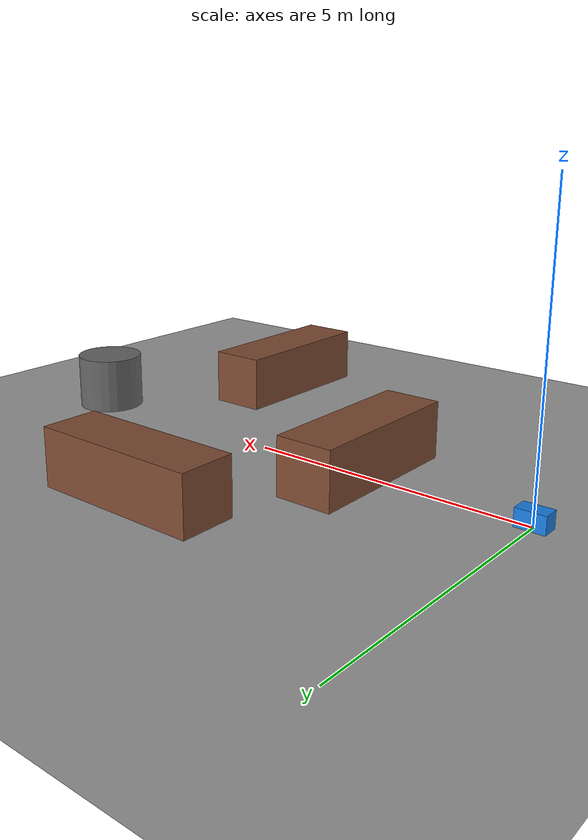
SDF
<?xml version="1.0" ?>
<sdf version="1.9">
  <world name="vehicle_world">
    <plugin filename="gz-sim-physics-system" name="gz::sim::systems::Physics"></plugin>
    <plugin filename="gz-sim-scene-broadcaster-system" name="gz::sim::systems::SceneBroadcaster"></plugin>
    <plugin filename="gz-sim-user-commands-system" name="gz::sim::systems::UserCommands"></plugin>
    <plugin filename="gz-sim-sensors-system" name="gz::sim::systems::Sensors"></plugin>

    <light type="directional" name="sun">
      <cast_shadows>true</cast_shadows>
      <pose>0 0 10 0 0 0</pose>
      <diffuse>1 1 1 1</diffuse>
      <direction>-0.5 0.1 -0.9</direction>
    </light>

    <model name="ground_plane">
      <static>true</static>
      <link name="link">
        <collision name="collision">
          <geometry><plane><normal>0 0 1</normal></plane></geometry>
        </collision>
        <visual name="visual">
          <geometry><plane><normal>0 0 1</normal><size>50 50</size></plane></geometry>
          <material><ambient>0.6 0.6 0.6 1</ambient><diffuse>0.6 0.6 0.6 1</diffuse></material>
        </visual>
      </link>
    </model>

    <model name="obstacle_1">
      <static>true</static>
      <pose>3 0 0.5 0 0 0</pose>
      <link name="link">
        <collision name="collision"><geometry><box><size>1 3 1</size></box></geometry></collision>
        <visual name="visual"><geometry><box><size>1 3 1</size></box></geometry>
          <material><ambient>0.5 0.3 0.2 1</ambient><diffuse>0.5 0.3 0.2 1</diffuse></material></visual>
      </link>
    </model>

    <model name="obstacle_2">
      <static>true</static>
      <pose>7 -3 0.5 0 0 0</pose>
      <link name="link">
        <collision name="collision"><geometry><box><size>1 3 1</size></box></geometry></collision>
        <visual name="visual"><geometry><box><size>1 3 1</size></box></geometry>
          <material><ambient>0.5 0.3 0.2 1</ambient><diffuse>0.5 0.3 0.2 1</diffuse></material></visual>
      </link>
    </model>

    <model name="obstacle_3">
      <static>true</static>
      <pose>5 3 0.5 0 0 0</pose>
      <link name="link">
        <collision name="collision"><geometry><box><size>3 1 1</size></box></geometry></collision>
        <visual name="visual"><geometry><box><size>3 1 1</size></box></geometry>
          <material><ambient>0.5 0.3 0.2 1</ambient><diffuse>0.5 0.3 0.2 1</diffuse></material></visual>
      </link>
    </model>

    <model name="obstacle_4">
      <static>true</static>
      <pose>9 0 0.5 0 0 0</pose>
      <link name="link">
        <collision name="collision"><geometry><cylinder><radius>0.6</radius><length>1</length></cylinder></geometry></collision>
        <visual name="visual"><geometry><cylinder><radius>0.6</radius><length>1</length></cylinder></geometry>
          <material><ambient>0.4 0.4 0.4 1</ambient><diffuse>0.4 0.4 0.4 1</diffuse></material></visual>
      </link>
    </model>

    <model name="vehicle">
      <pose>0 0 0.15 0 0 0</pose>
      <link name="base_link">
        <inertial>
          <mass>1.0</mass>
          <inertia><ixx>0.05</ixx><iyy>0.05</iyy><izz>0.05</izz><ixy>0</ixy><ixz>0</ixz><iyz>0</iyz></inertia>
        </inertial>
        <collision name="collision"><geometry><box><size>0.5 0.3 0.3</size></box></geometry></collision>
        <visual name="visual"><geometry><box><size>0.5 0.3 0.3</size></box></geometry>
          <material><ambient>0.1 0.5 0.9 1</ambient><diffuse>0.1 0.5 0.9 1</diffuse></material></visual>
      </link>
      <plugin filename="gz-sim-velocity-control-system" name="gz::sim::systems::VelocityControl">
        <link_name>base_link</link_name>
      </plugin>
      <plugin filename="gz-sim-pose-publisher-system" name="gz::sim::systems::PosePublisher">
        <publish_link_pose>false</publish_link_pose>
	<publish_model_pose>true</publish_model_pose>
        <update_frequency>30</update_frequency>
	<use_pose_vector_msg>true</use_pose_vector_msg>
      </plugin>
    </model>
  </world>
</sdf>
